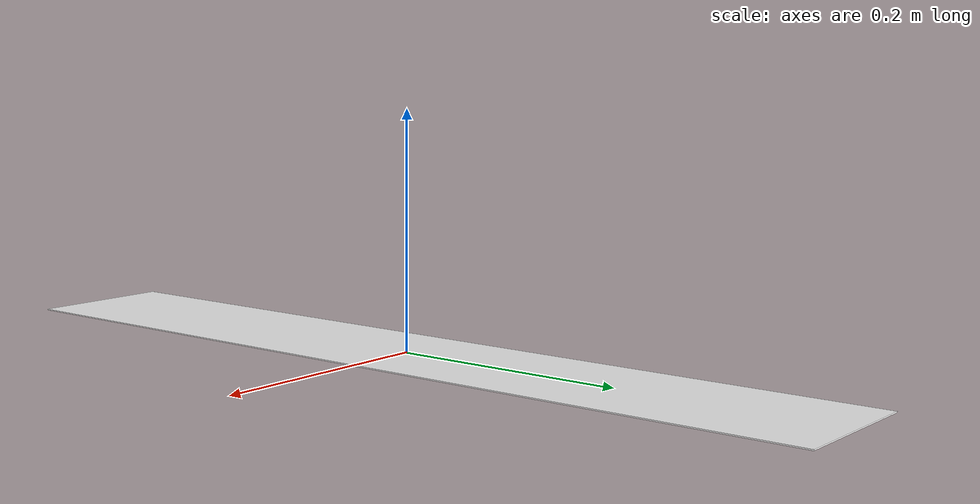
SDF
<?xml version='1.0'?>
<sdf version='1.5'>
  <model name='aruco_visual_board_1'>

    <link name='marker'>
      <pose frame=''>0 0 0 0 0 0</pose>
      <visual name='visual'>
        <geometry>
          <box>
            <size>0.13 0.78 0.001</size>
          </box>
        </geometry>
        <material>
          <script>
            <uri>model://aruco_visual_board_1/materials/scripts</uri>
            <uri>model://aruco_visual_board_1/materials/textures</uri>
            <name>ArucoVisualBoard1/Marker</name>
          </script>
          <ambient>1 1 1 1</ambient>
          <diffuse>1 1 1 1</diffuse>
          <specular>0 0 0 1</specular>
          <emissive>1 1 1 0</emissive>
          <shader type='vertex'>
            <normal_map>__default__</normal_map>
          </shader>
        </material>
        <pose frame=''>0 0 0 0 -0 0</pose>
        <cast_shadows>1</cast_shadows>
        <transparency>0</transparency>
      </visual>
      <collision name='collision'>
        <laser_retro>0</laser_retro>
        <max_contacts>10</max_contacts>
        <pose frame=''>0 0 0 0 -0 0</pose>
        <geometry>
          <box>
            <size>0.1778 0.1778 0.001</size>
          </box>
        </geometry>
      </collision>
    </link>
    <static>1</static>
    <allow_auto_disable>1</allow_auto_disable>
  </model>
</sdf>
